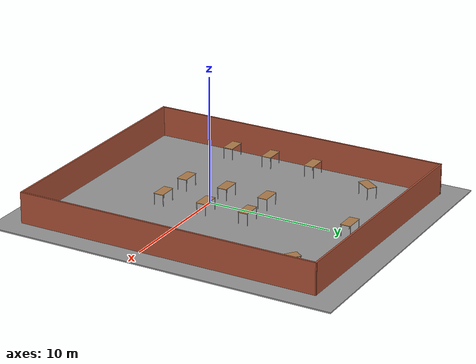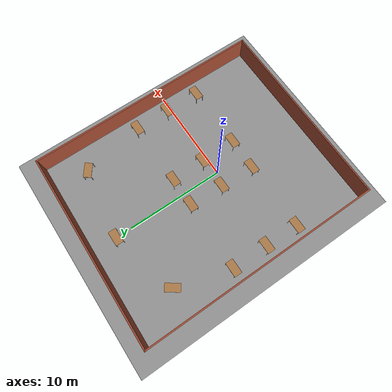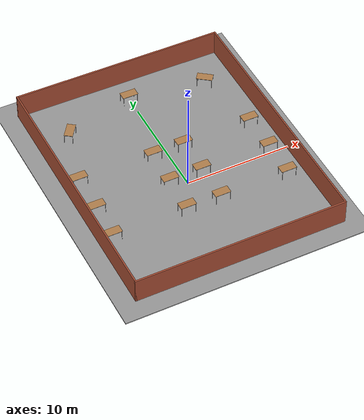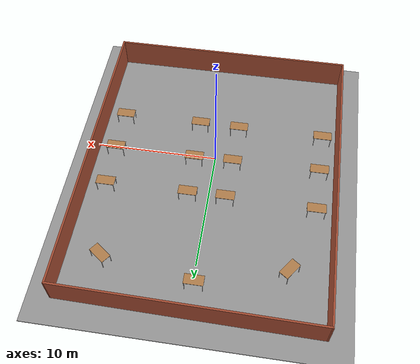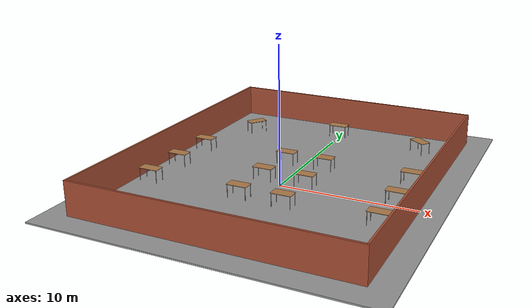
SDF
<sdf version="1.6">
 <world name="default">
  <light name="sun" type="directional">
   <pose>0 0 10 0 -0 0</pose>
   <diffuse>0.8 0.8 0.8 1</diffuse>
   <specular>0.2 0.2 0.2 1</specular>
   <attenuation>
    <range>1000</range>
    <constant>0.9</constant>
    <linear>0.01</linear>
    <quadratic>0.001</quadratic>
   </attenuation>
   <direction>-0.5 0.1 -0.9</direction>
  </light>
  <model name="ground_plane">
   <static>1</static>
   <link name="link">
    <collision name="collision">
     <geometry><plane><normal>0 0 1</normal><size>100 100</size></plane></geometry>
     <surface>
      <contact><collide_bitmask>65535</collide_bitmask></contact>
      <friction><ode><mu>100</mu><mu2>50</mu2></ode></friction>
     </surface>
    </collision>
    <visual name="visual">
     <cast_shadows>0</cast_shadows>
     <geometry><plane><normal>0 0 1</normal><size>100 100</size></plane></geometry>
     <material>
      <script><uri>file://media/materials/scripts/gazebo.material</uri><name>Gazebo/Grey</name></script>
     </material>
    </visual>
   </link>
  </model>
  <gravity>0 0 -9.8</gravity>
  <magnetic_field>6e-06 2.3e-05 -4.2e-05</magnetic_field>
  <atmosphere type="adiabatic"/>
  <physics name="default_physics" default="0" type="ode">
   <max_step_size>0.001</max_step_size>
   <real_time_factor>1</real_time_factor>
   <real_time_update_rate>1000</real_time_update_rate>
  </physics>
  <scene><ambient>0.4 0.4 0.4 1</ambient><background>0.7 0.7 0.7 1</background><shadows>1</shadows></scene>
  <spherical_coordinates>
   <surface_model>EARTH_WGS84</surface_model>
   <latitude_deg>0</latitude_deg>
   <longitude_deg>0</longitude_deg>
   <elevation>0</elevation>
   <heading_deg>0</heading_deg>
  </spherical_coordinates>
  <model name="table">
   <static>1</static>
   <link name="link">
    <collision name="surface">
     <pose>0 0 1 0 -0 0</pose>
     <geometry><box><size>1.5 0.8 0.03</size></box></geometry>
     <surface><friction><ode><mu>0.6</mu><mu2>0.6</mu2></ode></friction></surface>
    </collision>
    <visual name="visual1">
     <pose>0 0 1 0 -0 0</pose>
     <geometry><box><size>1.5 0.8 0.03</size></box></geometry>
     <material>
      <script><uri>file://media/materials/scripts/gazebo.material</uri><name>Gazebo/Wood</name></script>
     </material>
    </visual>
    <collision name="front_left_leg">
     <pose>0.68 0.38 0.5 0 -0 0</pose>
     <geometry><cylinder><radius>0.02</radius><length>1</length></cylinder></geometry>
    </collision>
    <visual name="front_left_leg">
     <pose>0.68 0.38 0.5 0 -0 0</pose>
     <geometry><cylinder><radius>0.02</radius><length>1</length></cylinder></geometry>
     <material>
      <script><uri>file://media/materials/scripts/gazebo.material</uri><name>Gazebo/Grey</name></script>
     </material>
    </visual>
    <collision name="front_right_leg">
     <pose>0.68 -0.38 0.5 0 -0 0</pose>
     <geometry><cylinder><radius>0.02</radius><length>1</length></cylinder></geometry>
    </collision>
    <visual name="front_right_leg">
     <pose>0.68 -0.38 0.5 0 -0 0</pose>
     <geometry><cylinder><radius>0.02</radius><length>1</length></cylinder></geometry>
     <material>
      <script><uri>file://media/materials/scripts/gazebo.material</uri><name>Gazebo/Grey</name></script>
     </material>
    </visual>
    <collision name="back_right_leg">
     <pose>-0.68 -0.38 0.5 0 -0 0</pose>
     <geometry><cylinder><radius>0.02</radius><length>1</length></cylinder></geometry>
    </collision>
    <visual name="back_right_leg">
     <pose>-0.68 -0.38 0.5 0 -0 0</pose>
     <geometry><cylinder><radius>0.02</radius><length>1</length></cylinder></geometry>
     <material>
      <script><uri>file://media/materials/scripts/gazebo.material</uri><name>Gazebo/Grey</name></script>
     </material>
    </visual>
    <collision name="back_left_leg">
     <pose>-0.68 0.38 0.5 0 -0 0</pose>
     <geometry><cylinder><radius>0.02</radius><length>1</length></cylinder></geometry>
    </collision>
    <visual name="back_left_leg">
     <pose>-0.68 0.38 0.5 0 -0 0</pose>
     <geometry><cylinder><radius>0.02</radius><length>1</length></cylinder></geometry>
     <material>
      <script><uri>file://media/materials/scripts/gazebo.material</uri><name>Gazebo/Grey</name></script>
     </material>
    </visual>
   </link>
   <pose>8.25392 -3.02569 0 0 -0 0</pose>
  </model>
  <model name="table_0">
   <static>1</static>
   <link name="link">
    <collision name="surface">
     <pose>0 0 1 0 -0 0</pose>
     <geometry><box><size>1.5 0.8 0.03</size></box></geometry>
     <surface><friction><ode><mu>0.6</mu><mu2>0.6</mu2></ode></friction></surface>
    </collision>
    <visual name="visual1">
     <pose>0 0 1 0 -0 0</pose>
     <geometry><box><size>1.5 0.8 0.03</size></box></geometry>
     <material>
      <script><uri>file://media/materials/scripts/gazebo.material</uri><name>Gazebo/Wood</name></script>
     </material>
    </visual>
    <collision name="front_left_leg">
     <pose>0.68 0.38 0.5 0 -0 0</pose>
     <geometry><cylinder><radius>0.02</radius><length>1</length></cylinder></geometry>
    </collision>
    <visual name="front_left_leg">
     <pose>0.68 0.38 0.5 0 -0 0</pose>
     <geometry><cylinder><radius>0.02</radius><length>1</length></cylinder></geometry>
     <material>
      <script><uri>file://media/materials/scripts/gazebo.material</uri><name>Gazebo/Grey</name></script>
     </material>
    </visual>
    <collision name="front_right_leg">
     <pose>0.68 -0.38 0.5 0 -0 0</pose>
     <geometry><cylinder><radius>0.02</radius><length>1</length></cylinder></geometry>
    </collision>
    <visual name="front_right_leg">
     <pose>0.68 -0.38 0.5 0 -0 0</pose>
     <geometry><cylinder><radius>0.02</radius><length>1</length></cylinder></geometry>
     <material>
      <script><uri>file://media/materials/scripts/gazebo.material</uri><name>Gazebo/Grey</name></script>
     </material>
    </visual>
    <collision name="back_right_leg">
     <pose>-0.68 -0.38 0.5 0 -0 0</pose>
     <geometry><cylinder><radius>0.02</radius><length>1</length></cylinder></geometry>
    </collision>
    <visual name="back_right_leg">
     <pose>-0.68 -0.38 0.5 0 -0 0</pose>
     <geometry><cylinder><radius>0.02</radius><length>1</length></cylinder></geometry>
     <material>
      <script><uri>file://media/materials/scripts/gazebo.material</uri><name>Gazebo/Grey</name></script>
     </material>
    </visual>
    <collision name="back_left_leg">
     <pose>-0.68 0.38 0.5 0 -0 0</pose>
     <geometry><cylinder><radius>0.02</radius><length>1</length></cylinder></geometry>
    </collision>
    <visual name="back_left_leg">
     <pose>-0.68 0.38 0.5 0 -0 0</pose>
     <geometry><cylinder><radius>0.02</radius><length>1</length></cylinder></geometry>
     <material>
      <script><uri>file://media/materials/scripts/gazebo.material</uri><name>Gazebo/Grey</name></script>
     </material>
    </visual>
   </link>
   <pose>1.71953 -3.02612 0 0 -0 0</pose>
  </model>
  <model name="table_1">
   <static>1</static>
   <link name="link">
    <collision name="surface">
     <pose>0 0 1 0 -0 0</pose>
     <geometry><box><size>1.5 0.8 0.03</size></box></geometry>
     <surface><friction><ode><mu>0.6</mu><mu2>0.6</mu2></ode></friction></surface>
    </collision>
    <visual name="visual1">
     <pose>0 0 1 0 -0 0</pose>
     <geometry><box><size>1.5 0.8 0.03</size></box></geometry>
     <material>
      <script><uri>file://media/materials/scripts/gazebo.material</uri><name>Gazebo/Wood</name></script>
     </material>
    </visual>
    <collision name="front_left_leg">
     <pose>0.68 0.38 0.5 0 -0 0</pose>
     <geometry><cylinder><radius>0.02</radius><length>1</length></cylinder></geometry>
    </collision>
    <visual name="front_left_leg">
     <pose>0.68 0.38 0.5 0 -0 0</pose>
     <geometry><cylinder><radius>0.02</radius><length>1</length></cylinder></geometry>
     <material>
      <script><uri>file://media/materials/scripts/gazebo.material</uri><name>Gazebo/Grey</name></script>
     </material>
    </visual>
    <collision name="front_right_leg">
     <pose>0.68 -0.38 0.5 0 -0 0</pose>
     <geometry><cylinder><radius>0.02</radius><length>1</length></cylinder></geometry>
    </collision>
    <visual name="front_right_leg">
     <pose>0.68 -0.38 0.5 0 -0 0</pose>
     <geometry><cylinder><radius>0.02</radius><length>1</length></cylinder></geometry>
     <material>
      <script><uri>file://media/materials/scripts/gazebo.material</uri><name>Gazebo/Grey</name></script>
     </material>
    </visual>
    <collision name="back_right_leg">
     <pose>-0.68 -0.38 0.5 0 -0 0</pose>
     <geometry><cylinder><radius>0.02</radius><length>1</length></cylinder></geometry>
    </collision>
    <visual name="back_right_leg">
     <pose>-0.68 -0.38 0.5 0 -0 0</pose>
     <geometry><cylinder><radius>0.02</radius><length>1</length></cylinder></geometry>
     <material>
      <script><uri>file://media/materials/scripts/gazebo.material</uri><name>Gazebo/Grey</name></script>
     </material>
    </visual>
    <collision name="back_left_leg">
     <pose>-0.68 0.38 0.5 0 -0 0</pose>
     <geometry><cylinder><radius>0.02</radius><length>1</length></cylinder></geometry>
    </collision>
    <visual name="back_left_leg">
     <pose>-0.68 0.38 0.5 0 -0 0</pose>
     <geometry><cylinder><radius>0.02</radius><length>1</length></cylinder></geometry>
     <material>
      <script><uri>file://media/materials/scripts/gazebo.material</uri><name>Gazebo/Grey</name></script>
     </material>
    </visual>
   </link>
   <pose>8.31392 0.499747 0 0 -0 0</pose>
  </model>
  <model name="table_2">
   <static>1</static>
   <link name="link">
    <collision name="surface">
     <pose>0 0 1 0 -0 0</pose>
     <geometry><box><size>1.5 0.8 0.03</size></box></geometry>
     <surface><friction><ode><mu>0.6</mu><mu2>0.6</mu2></ode></friction></surface>
    </collision>
    <visual name="visual1">
     <pose>0 0 1 0 -0 0</pose>
     <geometry><box><size>1.5 0.8 0.03</size></box></geometry>
     <material>
      <script><uri>file://media/materials/scripts/gazebo.material</uri><name>Gazebo/Wood</name></script>
     </material>
    </visual>
    <collision name="front_left_leg">
     <pose>0.68 0.38 0.5 0 -0 0</pose>
     <geometry><cylinder><radius>0.02</radius><length>1</length></cylinder></geometry>
    </collision>
    <visual name="front_left_leg">
     <pose>0.68 0.38 0.5 0 -0 0</pose>
     <geometry><cylinder><radius>0.02</radius><length>1</length></cylinder></geometry>
     <material>
      <script><uri>file://media/materials/scripts/gazebo.material</uri><name>Gazebo/Grey</name></script>
     </material>
    </visual>
    <collision name="front_right_leg">
     <pose>0.68 -0.38 0.5 0 -0 0</pose>
     <geometry><cylinder><radius>0.02</radius><length>1</length></cylinder></geometry>
    </collision>
    <visual name="front_right_leg">
     <pose>0.68 -0.38 0.5 0 -0 0</pose>
     <geometry><cylinder><radius>0.02</radius><length>1</length></cylinder></geometry>
     <material>
      <script><uri>file://media/materials/scripts/gazebo.material</uri><name>Gazebo/Grey</name></script>
     </material>
    </visual>
    <collision name="back_right_leg">
     <pose>-0.68 -0.38 0.5 0 -0 0</pose>
     <geometry><cylinder><radius>0.02</radius><length>1</length></cylinder></geometry>
    </collision>
    <visual name="back_right_leg">
     <pose>-0.68 -0.38 0.5 0 -0 0</pose>
     <geometry><cylinder><radius>0.02</radius><length>1</length></cylinder></geometry>
     <material>
      <script><uri>file://media/materials/scripts/gazebo.material</uri><name>Gazebo/Grey</name></script>
     </material>
    </visual>
    <collision name="back_left_leg">
     <pose>-0.68 0.38 0.5 0 -0 0</pose>
     <geometry><cylinder><radius>0.02</radius><length>1</length></cylinder></geometry>
    </collision>
    <visual name="back_left_leg">
     <pose>-0.68 0.38 0.5 0 -0 0</pose>
     <geometry><cylinder><radius>0.02</radius><length>1</length></cylinder></geometry>
     <material>
      <script><uri>file://media/materials/scripts/gazebo.material</uri><name>Gazebo/Grey</name></script>
     </material>
    </visual>
   </link>
   <pose>1.67214 0.604931 0 0 -0 0</pose>
  </model>
  <model name="table_3">
   <static>1</static>
   <link name="link">
    <collision name="surface">
     <pose>0 0 1 0 -0 0</pose>
     <geometry><box><size>1.5 0.8 0.03</size></box></geometry>
     <surface><friction><ode><mu>0.6</mu><mu2>0.6</mu2></ode></friction></surface>
    </collision>
    <visual name="visual1">
     <pose>0 0 1 0 -0 0</pose>
     <geometry><box><size>1.5 0.8 0.03</size></box></geometry>
     <material>
      <script><uri>file://media/materials/scripts/gazebo.material</uri><name>Gazebo/Wood</name></script>
     </material>
    </visual>
    <collision name="front_left_leg">
     <pose>0.68 0.38 0.5 0 -0 0</pose>
     <geometry><cylinder><radius>0.02</radius><length>1</length></cylinder></geometry>
    </collision>
    <visual name="front_left_leg">
     <pose>0.68 0.38 0.5 0 -0 0</pose>
     <geometry><cylinder><radius>0.02</radius><length>1</length></cylinder></geometry>
     <material>
      <script><uri>file://media/materials/scripts/gazebo.material</uri><name>Gazebo/Grey</name></script>
     </material>
    </visual>
    <collision name="front_right_leg">
     <pose>0.68 -0.38 0.5 0 -0 0</pose>
     <geometry><cylinder><radius>0.02</radius><length>1</length></cylinder></geometry>
    </collision>
    <visual name="front_right_leg">
     <pose>0.68 -0.38 0.5 0 -0 0</pose>
     <geometry><cylinder><radius>0.02</radius><length>1</length></cylinder></geometry>
     <material>
      <script><uri>file://media/materials/scripts/gazebo.material</uri><name>Gazebo/Grey</name></script>
     </material>
    </visual>
    <collision name="back_right_leg">
     <pose>-0.68 -0.38 0.5 0 -0 0</pose>
     <geometry><cylinder><radius>0.02</radius><length>1</length></cylinder></geometry>
    </collision>
    <visual name="back_right_leg">
     <pose>-0.68 -0.38 0.5 0 -0 0</pose>
     <geometry><cylinder><radius>0.02</radius><length>1</length></cylinder></geometry>
     <material>
      <script><uri>file://media/materials/scripts/gazebo.material</uri><name>Gazebo/Grey</name></script>
     </material>
    </visual>
    <collision name="back_left_leg">
     <pose>-0.68 0.38 0.5 0 -0 0</pose>
     <geometry><cylinder><radius>0.02</radius><length>1</length></cylinder></geometry>
    </collision>
    <visual name="back_left_leg">
     <pose>-0.68 0.38 0.5 0 -0 0</pose>
     <geometry><cylinder><radius>0.02</radius><length>1</length></cylinder></geometry>
     <material>
      <script><uri>file://media/materials/scripts/gazebo.material</uri><name>Gazebo/Grey</name></script>
     </material>
    </visual>
   </link>
   <pose>8.27168 4.11192 0 0 -0 0</pose>
  </model>
  <model name="table_4">
   <static>1</static>
   <link name="link">
    <collision name="surface">
     <pose>0 0 1 0 -0 0</pose>
     <geometry><box><size>1.5 0.8 0.03</size></box></geometry>
     <surface><friction><ode><mu>0.6</mu><mu2>0.6</mu2></ode></friction></surface>
    </collision>
    <visual name="visual1">
     <pose>0 0 1 0 -0 0</pose>
     <geometry><box><size>1.5 0.8 0.03</size></box></geometry>
     <material>
      <script><uri>file://media/materials/scripts/gazebo.material</uri><name>Gazebo/Wood</name></script>
     </material>
    </visual>
    <collision name="front_left_leg">
     <pose>0.68 0.38 0.5 0 -0 0</pose>
     <geometry><cylinder><radius>0.02</radius><length>1</length></cylinder></geometry>
    </collision>
    <visual name="front_left_leg">
     <pose>0.68 0.38 0.5 0 -0 0</pose>
     <geometry><cylinder><radius>0.02</radius><length>1</length></cylinder></geometry>
     <material>
      <script><uri>file://media/materials/scripts/gazebo.material</uri><name>Gazebo/Grey</name></script>
     </material>
    </visual>
    <collision name="front_right_leg">
     <pose>0.68 -0.38 0.5 0 -0 0</pose>
     <geometry><cylinder><radius>0.02</radius><length>1</length></cylinder></geometry>
    </collision>
    <visual name="front_right_leg">
     <pose>0.68 -0.38 0.5 0 -0 0</pose>
     <geometry><cylinder><radius>0.02</radius><length>1</length></cylinder></geometry>
     <material>
      <script><uri>file://media/materials/scripts/gazebo.material</uri><name>Gazebo/Grey</name></script>
     </material>
    </visual>
    <collision name="back_right_leg">
     <pose>-0.68 -0.38 0.5 0 -0 0</pose>
     <geometry><cylinder><radius>0.02</radius><length>1</length></cylinder></geometry>
    </collision>
    <visual name="back_right_leg">
     <pose>-0.68 -0.38 0.5 0 -0 0</pose>
     <geometry><cylinder><radius>0.02</radius><length>1</length></cylinder></geometry>
     <material>
      <script><uri>file://media/materials/scripts/gazebo.material</uri><name>Gazebo/Grey</name></script>
     </material>
    </visual>
    <collision name="back_left_leg">
     <pose>-0.68 0.38 0.5 0 -0 0</pose>
     <geometry><cylinder><radius>0.02</radius><length>1</length></cylinder></geometry>
    </collision>
    <visual name="back_left_leg">
     <pose>-0.68 0.38 0.5 0 -0 0</pose>
     <geometry><cylinder><radius>0.02</radius><length>1</length></cylinder></geometry>
     <material>
      <script><uri>file://media/materials/scripts/gazebo.material</uri><name>Gazebo/Grey</name></script>
     </material>
    </visual>
   </link>
   <pose>1.63432 4.10419 0 0 -0 0</pose>
  </model>
  <model name="table_5">
   <static>1</static>
   <link name="link">
    <collision name="surface">
     <pose>0 0 1 0 -0 0</pose>
     <geometry><box><size>1.5 0.8 0.03</size></box></geometry>
     <surface><friction><ode><mu>0.6</mu><mu2>0.6</mu2></ode></friction></surface>
    </collision>
    <visual name="visual1">
     <pose>0 0 1 0 -0 0</pose>
     <geometry><box><size>1.5 0.8 0.03</size></box></geometry>
     <material>
      <script><uri>file://media/materials/scripts/gazebo.material</uri><name>Gazebo/Wood</name></script>
     </material>
    </visual>
    <collision name="front_left_leg">
     <pose>0.68 0.38 0.5 0 -0 0</pose>
     <geometry><cylinder><radius>0.02</radius><length>1</length></cylinder></geometry>
    </collision>
    <visual name="front_left_leg">
     <pose>0.68 0.38 0.5 0 -0 0</pose>
     <geometry><cylinder><radius>0.02</radius><length>1</length></cylinder></geometry>
     <material>
      <script><uri>file://media/materials/scripts/gazebo.material</uri><name>Gazebo/Grey</name></script>
     </material>
    </visual>
    <collision name="front_right_leg">
     <pose>0.68 -0.38 0.5 0 -0 0</pose>
     <geometry><cylinder><radius>0.02</radius><length>1</length></cylinder></geometry>
    </collision>
    <visual name="front_right_leg">
     <pose>0.68 -0.38 0.5 0 -0 0</pose>
     <geometry><cylinder><radius>0.02</radius><length>1</length></cylinder></geometry>
     <material>
      <script><uri>file://media/materials/scripts/gazebo.material</uri><name>Gazebo/Grey</name></script>
     </material>
    </visual>
    <collision name="back_right_leg">
     <pose>-0.68 -0.38 0.5 0 -0 0</pose>
     <geometry><cylinder><radius>0.02</radius><length>1</length></cylinder></geometry>
    </collision>
    <visual name="back_right_leg">
     <pose>-0.68 -0.38 0.5 0 -0 0</pose>
     <geometry><cylinder><radius>0.02</radius><length>1</length></cylinder></geometry>
     <material>
      <script><uri>file://media/materials/scripts/gazebo.material</uri><name>Gazebo/Grey</name></script>
     </material>
    </visual>
    <collision name="back_left_leg">
     <pose>-0.68 0.38 0.5 0 -0 0</pose>
     <geometry><cylinder><radius>0.02</radius><length>1</length></cylinder></geometry>
    </collision>
    <visual name="back_left_leg">
     <pose>-0.68 0.38 0.5 0 -0 0</pose>
     <geometry><cylinder><radius>0.02</radius><length>1</length></cylinder></geometry>
     <material>
      <script><uri>file://media/materials/scripts/gazebo.material</uri><name>Gazebo/Grey</name></script>
     </material>
    </visual>
   </link>
   <pose>-0.125753 11.5989 0 0 -0 0</pose>
  </model>
  <model name="table_6">
   <static>1</static>
   <link name="link">
    <collision name="surface">
     <pose>0 0 1 0 -0 0</pose>
     <geometry><box><size>1.5 0.8 0.03</size></box></geometry>
     <surface><friction><ode><mu>0.6</mu><mu2>0.6</mu2></ode></friction></surface>
    </collision>
    <visual name="visual1">
     <pose>0 0 1 0 -0 0</pose>
     <geometry><box><size>1.5 0.8 0.03</size></box></geometry>
     <material>
      <script><uri>file://media/materials/scripts/gazebo.material</uri><name>Gazebo/Wood</name></script>
     </material>
    </visual>
    <collision name="front_left_leg">
     <pose>0.68 0.38 0.5 0 -0 0</pose>
     <geometry><cylinder><radius>0.02</radius><length>1</length></cylinder></geometry>
    </collision>
    <visual name="front_left_leg">
     <pose>0.68 0.38 0.5 0 -0 0</pose>
     <geometry><cylinder><radius>0.02</radius><length>1</length></cylinder></geometry>
     <material>
      <script><uri>file://media/materials/scripts/gazebo.material</uri><name>Gazebo/Grey</name></script>
     </material>
    </visual>
    <collision name="front_right_leg">
     <pose>0.68 -0.38 0.5 0 -0 0</pose>
     <geometry><cylinder><radius>0.02</radius><length>1</length></cylinder></geometry>
    </collision>
    <visual name="front_right_leg">
     <pose>0.68 -0.38 0.5 0 -0 0</pose>
     <geometry><cylinder><radius>0.02</radius><length>1</length></cylinder></geometry>
     <material>
      <script><uri>file://media/materials/scripts/gazebo.material</uri><name>Gazebo/Grey</name></script>
     </material>
    </visual>
    <collision name="back_right_leg">
     <pose>-0.68 -0.38 0.5 0 -0 0</pose>
     <geometry><cylinder><radius>0.02</radius><length>1</length></cylinder></geometry>
    </collision>
    <visual name="back_right_leg">
     <pose>-0.68 -0.38 0.5 0 -0 0</pose>
     <geometry><cylinder><radius>0.02</radius><length>1</length></cylinder></geometry>
     <material>
      <script><uri>file://media/materials/scripts/gazebo.material</uri><name>Gazebo/Grey</name></script>
     </material>
    </visual>
    <collision name="back_left_leg">
     <pose>-0.68 0.38 0.5 0 -0 0</pose>
     <geometry><cylinder><radius>0.02</radius><length>1</length></cylinder></geometry>
    </collision>
    <visual name="back_left_leg">
     <pose>-0.68 0.38 0.5 0 -0 0</pose>
     <geometry><cylinder><radius>0.02</radius><length>1</length></cylinder></geometry>
     <material>
      <script><uri>file://media/materials/scripts/gazebo.material</uri><name>Gazebo/Grey</name></script>
     </material>
    </visual>
   </link>
   <pose>-6.88104 9.71686 0 0 -0 0.94193</pose>
  </model>
  <model name="table_7">
   <static>1</static>
   <link name="link">
    <collision name="surface">
     <pose>0 0 1 0 -0 0</pose>
     <geometry><box><size>1.5 0.8 0.03</size></box></geometry>
     <surface><friction><ode><mu>0.6</mu><mu2>0.6</mu2></ode></friction></surface>
    </collision>
    <visual name="visual1">
     <pose>0 0 1 0 -0 0</pose>
     <geometry><box><size>1.5 0.8 0.03</size></box></geometry>
     <material>
      <script><uri>file://media/materials/scripts/gazebo.material</uri><name>Gazebo/Wood</name></script>
     </material>
    </visual>
    <collision name="front_left_leg">
     <pose>0.68 0.38 0.5 0 -0 0</pose>
     <geometry><cylinder><radius>0.02</radius><length>1</length></cylinder></geometry>
    </collision>
    <visual name="front_left_leg">
     <pose>0.68 0.38 0.5 0 -0 0</pose>
     <geometry><cylinder><radius>0.02</radius><length>1</length></cylinder></geometry>
     <material>
      <script><uri>file://media/materials/scripts/gazebo.material</uri><name>Gazebo/Grey</name></script>
     </material>
    </visual>
    <collision name="front_right_leg">
     <pose>0.68 -0.38 0.5 0 -0 0</pose>
     <geometry><cylinder><radius>0.02</radius><length>1</length></cylinder></geometry>
    </collision>
    <visual name="front_right_leg">
     <pose>0.68 -0.38 0.5 0 -0 0</pose>
     <geometry><cylinder><radius>0.02</radius><length>1</length></cylinder></geometry>
     <material>
      <script><uri>file://media/materials/scripts/gazebo.material</uri><name>Gazebo/Grey</name></script>
     </material>
    </visual>
    <collision name="back_right_leg">
     <pose>-0.68 -0.38 0.5 0 -0 0</pose>
     <geometry><cylinder><radius>0.02</radius><length>1</length></cylinder></geometry>
    </collision>
    <visual name="back_right_leg">
     <pose>-0.68 -0.38 0.5 0 -0 0</pose>
     <geometry><cylinder><radius>0.02</radius><length>1</length></cylinder></geometry>
     <material>
      <script><uri>file://media/materials/scripts/gazebo.material</uri><name>Gazebo/Grey</name></script>
     </material>
    </visual>
    <collision name="back_left_leg">
     <pose>-0.68 0.38 0.5 0 -0 0</pose>
     <geometry><cylinder><radius>0.02</radius><length>1</length></cylinder></geometry>
    </collision>
    <visual name="back_left_leg">
     <pose>-0.68 0.38 0.5 0 -0 0</pose>
     <geometry><cylinder><radius>0.02</radius><length>1</length></cylinder></geometry>
     <material>
      <script><uri>file://media/materials/scripts/gazebo.material</uri><name>Gazebo/Grey</name></script>
     </material>
    </visual>
   </link>
   <pose>-8.54454 4.22579 0 0 -0 0</pose>
  </model>
  <model name="table_8">
   <static>1</static>
   <link name="link">
    <collision name="surface">
     <pose>0 0 1 0 -0 0</pose>
     <geometry><box><size>1.5 0.8 0.03</size></box></geometry>
     <surface><friction><ode><mu>0.6</mu><mu2>0.6</mu2></ode></friction></surface>
    </collision>
    <visual name="visual1">
     <pose>0 0 1 0 -0 0</pose>
     <geometry><box><size>1.5 0.8 0.03</size></box></geometry>
     <material>
      <script><uri>file://media/materials/scripts/gazebo.material</uri><name>Gazebo/Wood</name></script>
     </material>
    </visual>
    <collision name="front_left_leg">
     <pose>0.68 0.38 0.5 0 -0 0</pose>
     <geometry><cylinder><radius>0.02</radius><length>1</length></cylinder></geometry>
    </collision>
    <visual name="front_left_leg">
     <pose>0.68 0.38 0.5 0 -0 0</pose>
     <geometry><cylinder><radius>0.02</radius><length>1</length></cylinder></geometry>
     <material>
      <script><uri>file://media/materials/scripts/gazebo.material</uri><name>Gazebo/Grey</name></script>
     </material>
    </visual>
    <collision name="front_right_leg">
     <pose>0.68 -0.38 0.5 0 -0 0</pose>
     <geometry><cylinder><radius>0.02</radius><length>1</length></cylinder></geometry>
    </collision>
    <visual name="front_right_leg">
     <pose>0.68 -0.38 0.5 0 -0 0</pose>
     <geometry><cylinder><radius>0.02</radius><length>1</length></cylinder></geometry>
     <material>
      <script><uri>file://media/materials/scripts/gazebo.material</uri><name>Gazebo/Grey</name></script>
     </material>
    </visual>
    <collision name="back_right_leg">
     <pose>-0.68 -0.38 0.5 0 -0 0</pose>
     <geometry><cylinder><radius>0.02</radius><length>1</length></cylinder></geometry>
    </collision>
    <visual name="back_right_leg">
     <pose>-0.68 -0.38 0.5 0 -0 0</pose>
     <geometry><cylinder><radius>0.02</radius><length>1</length></cylinder></geometry>
     <material>
      <script><uri>file://media/materials/scripts/gazebo.material</uri><name>Gazebo/Grey</name></script>
     </material>
    </visual>
    <collision name="back_left_leg">
     <pose>-0.68 0.38 0.5 0 -0 0</pose>
     <geometry><cylinder><radius>0.02</radius><length>1</length></cylinder></geometry>
    </collision>
    <visual name="back_left_leg">
     <pose>-0.68 0.38 0.5 0 -0 0</pose>
     <geometry><cylinder><radius>0.02</radius><length>1</length></cylinder></geometry>
     <material>
      <script><uri>file://media/materials/scripts/gazebo.material</uri><name>Gazebo/Grey</name></script>
     </material>
    </visual>
   </link>
   <pose>-8.57751 0.480002 0 0 -0 0</pose>
  </model>
  <model name="table_9">
   <static>1</static>
   <link name="link">
    <collision name="surface">
     <pose>0 0 1 0 -0 0</pose>
     <geometry><box><size>1.5 0.8 0.03</size></box></geometry>
     <surface><friction><ode><mu>0.6</mu><mu2>0.6</mu2></ode></friction></surface>
    </collision>
    <visual name="visual1">
     <pose>0 0 1 0 -0 0</pose>
     <geometry><box><size>1.5 0.8 0.03</size></box></geometry>
     <material>
      <script><uri>file://media/materials/scripts/gazebo.material</uri><name>Gazebo/Wood</name></script>
     </material>
    </visual>
    <collision name="front_left_leg">
     <pose>0.68 0.38 0.5 0 -0 0</pose>
     <geometry><cylinder><radius>0.02</radius><length>1</length></cylinder></geometry>
    </collision>
    <visual name="front_left_leg">
     <pose>0.68 0.38 0.5 0 -0 0</pose>
     <geometry><cylinder><radius>0.02</radius><length>1</length></cylinder></geometry>
     <material>
      <script><uri>file://media/materials/scripts/gazebo.material</uri><name>Gazebo/Grey</name></script>
     </material>
    </visual>
    <collision name="front_right_leg">
     <pose>0.68 -0.38 0.5 0 -0 0</pose>
     <geometry><cylinder><radius>0.02</radius><length>1</length></cylinder></geometry>
    </collision>
    <visual name="front_right_leg">
     <pose>0.68 -0.38 0.5 0 -0 0</pose>
     <geometry><cylinder><radius>0.02</radius><length>1</length></cylinder></geometry>
     <material>
      <script><uri>file://media/materials/scripts/gazebo.material</uri><name>Gazebo/Grey</name></script>
     </material>
    </visual>
    <collision name="back_right_leg">
     <pose>-0.68 -0.38 0.5 0 -0 0</pose>
     <geometry><cylinder><radius>0.02</radius><length>1</length></cylinder></geometry>
    </collision>
    <visual name="back_right_leg">
     <pose>-0.68 -0.38 0.5 0 -0 0</pose>
     <geometry><cylinder><radius>0.02</radius><length>1</length></cylinder></geometry>
     <material>
      <script><uri>file://media/materials/scripts/gazebo.material</uri><name>Gazebo/Grey</name></script>
     </material>
    </visual>
    <collision name="back_left_leg">
     <pose>-0.68 0.38 0.5 0 -0 0</pose>
     <geometry><cylinder><radius>0.02</radius><length>1</length></cylinder></geometry>
    </collision>
    <visual name="back_left_leg">
     <pose>-0.68 0.38 0.5 0 -0 0</pose>
     <geometry><cylinder><radius>0.02</radius><length>1</length></cylinder></geometry>
     <material>
      <script><uri>file://media/materials/scripts/gazebo.material</uri><name>Gazebo/Grey</name></script>
     </material>
    </visual>
   </link>
   <pose>-8.66548 -2.99358 0 0 -0 0</pose>
  </model>
  <model name="table_10">
   <static>1</static>
   <link name="link">
    <collision name="surface">
     <pose>0 0 1 0 -0 0</pose>
     <geometry><box><size>1.5 0.8 0.03</size></box></geometry>
     <surface><friction><ode><mu>0.6</mu><mu2>0.6</mu2></ode></friction></surface>
    </collision>
    <visual name="visual1">
     <pose>0 0 1 0 -0 0</pose>
     <geometry><box><size>1.5 0.8 0.03</size></box></geometry>
     <material>
      <script><uri>file://media/materials/scripts/gazebo.material</uri><name>Gazebo/Wood</name></script>
     </material>
    </visual>
    <collision name="front_left_leg">
     <pose>0.68 0.38 0.5 0 -0 0</pose>
     <geometry><cylinder><radius>0.02</radius><length>1</length></cylinder></geometry>
    </collision>
    <visual name="front_left_leg">
     <pose>0.68 0.38 0.5 0 -0 0</pose>
     <geometry><cylinder><radius>0.02</radius><length>1</length></cylinder></geometry>
     <material>
      <script><uri>file://media/materials/scripts/gazebo.material</uri><name>Gazebo/Grey</name></script>
     </material>
    </visual>
    <collision name="front_right_leg">
     <pose>0.68 -0.38 0.5 0 -0 0</pose>
     <geometry><cylinder><radius>0.02</radius><length>1</length></cylinder></geometry>
    </collision>
    <visual name="front_right_leg">
     <pose>0.68 -0.38 0.5 0 -0 0</pose>
     <geometry><cylinder><radius>0.02</radius><length>1</length></cylinder></geometry>
     <material>
      <script><uri>file://media/materials/scripts/gazebo.material</uri><name>Gazebo/Grey</name></script>
     </material>
    </visual>
    <collision name="back_right_leg">
     <pose>-0.68 -0.38 0.5 0 -0 0</pose>
     <geometry><cylinder><radius>0.02</radius><length>1</length></cylinder></geometry>
    </collision>
    <visual name="back_right_leg">
     <pose>-0.68 -0.38 0.5 0 -0 0</pose>
     <geometry><cylinder><radius>0.02</radius><length>1</length></cylinder></geometry>
     <material>
      <script><uri>file://media/materials/scripts/gazebo.material</uri><name>Gazebo/Grey</name></script>
     </material>
    </visual>
    <collision name="back_left_leg">
     <pose>-0.68 0.38 0.5 0 -0 0</pose>
     <geometry><cylinder><radius>0.02</radius><length>1</length></cylinder></geometry>
    </collision>
    <visual name="back_left_leg">
     <pose>-0.68 0.38 0.5 0 -0 0</pose>
     <geometry><cylinder><radius>0.02</radius><length>1</length></cylinder></geometry>
     <material>
      <script><uri>file://media/materials/scripts/gazebo.material</uri><name>Gazebo/Grey</name></script>
     </material>
    </visual>
   </link>
   <pose>-1.3745 4.08444 0 0 -0 0</pose>
  </model>
  <model name="table_11">
   <static>1</static>
   <link name="link">
    <collision name="surface">
     <pose>0 0 1 0 -0 0</pose>
     <geometry><box><size>1.5 0.8 0.03</size></box></geometry>
     <surface><friction><ode><mu>0.6</mu><mu2>0.6</mu2></ode></friction></surface>
    </collision>
    <visual name="visual1">
     <pose>0 0 1 0 -0 0</pose>
     <geometry><box><size>1.5 0.8 0.03</size></box></geometry>
     <material>
      <script><uri>file://media/materials/scripts/gazebo.material</uri><name>Gazebo/Wood</name></script>
     </material>
    </visual>
    <collision name="front_left_leg">
     <pose>0.68 0.38 0.5 0 -0 0</pose>
     <geometry><cylinder><radius>0.02</radius><length>1</length></cylinder></geometry>
    </collision>
    <visual name="front_left_leg">
     <pose>0.68 0.38 0.5 0 -0 0</pose>
     <geometry><cylinder><radius>0.02</radius><length>1</length></cylinder></geometry>
     <material>
      <script><uri>file://media/materials/scripts/gazebo.material</uri><name>Gazebo/Grey</name></script>
     </material>
    </visual>
    <collision name="front_right_leg">
     <pose>0.68 -0.38 0.5 0 -0 0</pose>
     <geometry><cylinder><radius>0.02</radius><length>1</length></cylinder></geometry>
    </collision>
    <visual name="front_right_leg">
     <pose>0.68 -0.38 0.5 0 -0 0</pose>
     <geometry><cylinder><radius>0.02</radius><length>1</length></cylinder></geometry>
     <material>
      <script><uri>file://media/materials/scripts/gazebo.material</uri><name>Gazebo/Grey</name></script>
     </material>
    </visual>
    <collision name="back_right_leg">
     <pose>-0.68 -0.38 0.5 0 -0 0</pose>
     <geometry><cylinder><radius>0.02</radius><length>1</length></cylinder></geometry>
    </collision>
    <visual name="back_right_leg">
     <pose>-0.68 -0.38 0.5 0 -0 0</pose>
     <geometry><cylinder><radius>0.02</radius><length>1</length></cylinder></geometry>
     <material>
      <script><uri>file://media/materials/scripts/gazebo.material</uri><name>Gazebo/Grey</name></script>
     </material>
    </visual>
    <collision name="back_left_leg">
     <pose>-0.68 0.38 0.5 0 -0 0</pose>
     <geometry><cylinder><radius>0.02</radius><length>1</length></cylinder></geometry>
    </collision>
    <visual name="back_left_leg">
     <pose>-0.68 0.38 0.5 0 -0 0</pose>
     <geometry><cylinder><radius>0.02</radius><length>1</length></cylinder></geometry>
     <material>
      <script><uri>file://media/materials/scripts/gazebo.material</uri><name>Gazebo/Grey</name></script>
     </material>
    </visual>
   </link>
   <pose>-1.49306 0.567274 0 0 -0 0</pose>
  </model>
  <model name="table_12">
   <static>1</static>
   <link name="link">
    <collision name="surface">
     <pose>0 0 1 0 -0 0</pose>
     <geometry><box><size>1.5 0.8 0.03</size></box></geometry>
     <surface><friction><ode><mu>0.6</mu><mu2>0.6</mu2></ode></friction></surface>
    </collision>
    <visual name="visual1">
     <pose>0 0 1 0 -0 0</pose>
     <geometry><box><size>1.5 0.8 0.03</size></box></geometry>
     <material>
      <script><uri>file://media/materials/scripts/gazebo.material</uri><name>Gazebo/Wood</name></script>
     </material>
    </visual>
    <collision name="front_left_leg">
     <pose>0.68 0.38 0.5 0 -0 0</pose>
     <geometry><cylinder><radius>0.02</radius><length>1</length></cylinder></geometry>
    </collision>
    <visual name="front_left_leg">
     <pose>0.68 0.38 0.5 0 -0 0</pose>
     <geometry><cylinder><radius>0.02</radius><length>1</length></cylinder></geometry>
     <material>
      <script><uri>file://media/materials/scripts/gazebo.material</uri><name>Gazebo/Grey</name></script>
     </material>
    </visual>
    <collision name="front_right_leg">
     <pose>0.68 -0.38 0.5 0 -0 0</pose>
     <geometry><cylinder><radius>0.02</radius><length>1</length></cylinder></geometry>
    </collision>
    <visual name="front_right_leg">
     <pose>0.68 -0.38 0.5 0 -0 0</pose>
     <geometry><cylinder><radius>0.02</radius><length>1</length></cylinder></geometry>
     <material>
      <script><uri>file://media/materials/scripts/gazebo.material</uri><name>Gazebo/Grey</name></script>
     </material>
    </visual>
    <collision name="back_right_leg">
     <pose>-0.68 -0.38 0.5 0 -0 0</pose>
     <geometry><cylinder><radius>0.02</radius><length>1</length></cylinder></geometry>
    </collision>
    <visual name="back_right_leg">
     <pose>-0.68 -0.38 0.5 0 -0 0</pose>
     <geometry><cylinder><radius>0.02</radius><length>1</length></cylinder></geometry>
     <material>
      <script><uri>file://media/materials/scripts/gazebo.material</uri><name>Gazebo/Grey</name></script>
     </material>
    </visual>
    <collision name="back_left_leg">
     <pose>-0.68 0.38 0.5 0 -0 0</pose>
     <geometry><cylinder><radius>0.02</radius><length>1</length></cylinder></geometry>
    </collision>
    <visual name="back_left_leg">
     <pose>-0.68 0.38 0.5 0 -0 0</pose>
     <geometry><cylinder><radius>0.02</radius><length>1</length></cylinder></geometry>
     <material>
      <script><uri>file://media/materials/scripts/gazebo.material</uri><name>Gazebo/Grey</name></script>
     </material>
    </visual>
   </link>
   <pose>-1.58625 -2.97362 0 0 -0 0</pose>
  </model>
  <model name="ground_plane_0">
   <static>1</static>
   <link name="link">
    <collision name="collision">
     <geometry><plane><normal>0 0 1</normal><size>100 100</size></plane></geometry>
     <surface><friction><ode><mu>100</mu><mu2>50</mu2></ode></friction></surface>
    </collision>
    <visual name="visual">
     <cast_shadows>0</cast_shadows>
     <geometry><plane><normal>0 0 1</normal><size>100 100</size></plane></geometry>
     <material>
      <script><uri>file://media/materials/scripts/gazebo.material</uri><name>Gazebo/Grey</name></script>
     </material>
    </visual>
   </link>
   <pose>6.89048 -5.9026 0 0 -0 0</pose>
  </model>
  <model name="rest">
   <pose>0.004866 2.10526 0 0 -0 0</pose>
   <link name="Wall_0">
    <collision name="Wall_0_Collision">
     <geometry><box><size>20 0.15 2.5</size></box></geometry>
     <pose>0 0 1.25 0 -0 0</pose>
    </collision>
    <visual name="Wall_0_Visual">
     <pose>0 0 1.25 0 -0 0</pose>
     <geometry><box><size>20 0.15 2.5</size></box></geometry>
     <material>
      <script><uri>file://media/materials/scripts/gazebo.material</uri><name>Gazebo/Bricks</name></script>
      <ambient>1 1 1 1</ambient>
     </material>
     <meta><layer>0</layer></meta>
    </visual>
    <pose>0 -12.1755 0 0 -0 3.14159</pose>
   </link>
   <link name="Wall_2">
    <collision name="Wall_2_Collision">
     <geometry><box><size>24.5 0.15 2.5</size></box></geometry>
     <pose>0 0 1.25 0 -0 0</pose>
    </collision>
    <visual name="Wall_2_Visual">
     <pose>0 0 1.25 0 -0 0</pose>
     <geometry><box><size>24.5 0.15 2.5</size></box></geometry>
     <material>
      <script><uri>file://media/materials/scripts/gazebo.material</uri><name>Gazebo/Bricks</name></script>
      <ambient>1 1 1 1</ambient>
     </material>
     <meta><layer>0</layer></meta>
    </visual>
    <pose>-9.925 -0.000468 0 0 -0 1.5708</pose>
   </link>
   <link name="Wall_4">
    <collision name="Wall_4_Collision">
     <geometry><box><size>24.25 0.15 2.5</size></box></geometry>
     <pose>0 0 1.25 0 -0 0</pose>
    </collision>
    <visual name="Wall_4_Visual">
     <pose>0 0 1.25 0 -0 0</pose>
     <geometry><box><size>24.25 0.15 2.5</size></box></geometry>
     <material>
      <script><uri>file://media/materials/scripts/gazebo.material</uri><name>Gazebo/Bricks</name></script>
      <ambient>1 1 1 1</ambient>
     </material>
     <meta><layer>0</layer></meta>
    </visual>
    <pose>9.925 -0.125468 0 0 -0 1.5708</pose>
   </link>
   <link name="Wall_5">
    <collision name="Wall_5_Collision">
     <geometry><box><size>20.0016 0.15 2.5</size></box></geometry>
     <pose>0 0 1.25 0 -0 0</pose>
    </collision>
    <visual name="Wall_5_Visual">
     <pose>0 0 1.25 0 -0 0</pose>
     <geometry><box><size>20.0016 0.15 2.5</size></box></geometry>
     <material>
      <script><uri>file://media/materials/scripts/gazebo.material</uri><name>Gazebo/Bricks</name></script>
      <ambient>1 1 1 1</ambient>
     </material>
     <meta><layer>0</layer></meta>
    </visual>
    <pose>0 12.0495 0 0 -0 3.129</pose>
   </link>
   <static>1</static>
  </model>
  <model name="table_13">
   <static>1</static>
   <link name="link">
    <collision name="surface">
     <pose>0 0 1 0 -0 0</pose>
     <geometry><box><size>1.5 0.8 0.03</size></box></geometry>
     <surface><friction><ode><mu>0.6</mu><mu2>0.6</mu2></ode></friction></surface>
    </collision>
    <visual name="visual1">
     <pose>0 0 1 0 -0 0</pose>
     <geometry><box><size>1.5 0.8 0.03</size></box></geometry>
     <material>
      <script><uri>file://media/materials/scripts/gazebo.material</uri><name>Gazebo/Wood</name></script>
     </material>
    </visual>
    <collision name="front_left_leg">
     <pose>0.68 0.38 0.5 0 -0 0</pose>
     <geometry><cylinder><radius>0.02</radius><length>1</length></cylinder></geometry>
    </collision>
    <visual name="front_left_leg">
     <pose>0.68 0.38 0.5 0 -0 0</pose>
     <geometry><cylinder><radius>0.02</radius><length>1</length></cylinder></geometry>
     <material>
      <script><uri>file://media/materials/scripts/gazebo.material</uri><name>Gazebo/Grey</name></script>
     </material>
    </visual>
    <collision name="front_right_leg">
     <pose>0.68 -0.38 0.5 0 -0 0</pose>
     <geometry><cylinder><radius>0.02</radius><length>1</length></cylinder></geometry>
    </collision>
    <visual name="front_right_leg">
     <pose>0.68 -0.38 0.5 0 -0 0</pose>
     <geometry><cylinder><radius>0.02</radius><length>1</length></cylinder></geometry>
     <material>
      <script><uri>file://media/materials/scripts/gazebo.material</uri><name>Gazebo/Grey</name></script>
     </material>
    </visual>
    <collision name="back_right_leg">
     <pose>-0.68 -0.38 0.5 0 -0 0</pose>
     <geometry><cylinder><radius>0.02</radius><length>1</length></cylinder></geometry>
    </collision>
    <visual name="back_right_leg">
     <pose>-0.68 -0.38 0.5 0 -0 0</pose>
     <geometry><cylinder><radius>0.02</radius><length>1</length></cylinder></geometry>
     <material>
      <script><uri>file://media/materials/scripts/gazebo.material</uri><name>Gazebo/Grey</name></script>
     </material>
    </visual>
    <collision name="back_left_leg">
     <pose>-0.68 0.38 0.5 0 -0 0</pose>
     <geometry><cylinder><radius>0.02</radius><length>1</length></cylinder></geometry>
    </collision>
    <visual name="back_left_leg">
     <pose>-0.68 0.38 0.5 0 -0 0</pose>
     <geometry><cylinder><radius>0.02</radius><length>1</length></cylinder></geometry>
     <material>
      <script><uri>file://media/materials/scripts/gazebo.material</uri><name>Gazebo/Grey</name></script>
     </material>
    </visual>
   </link>
   <pose>7.08317 10.4997 0 0 0 -0.637874</pose>
  </model>
 </world>
</sdf>
